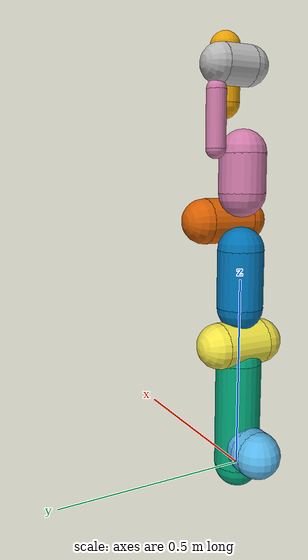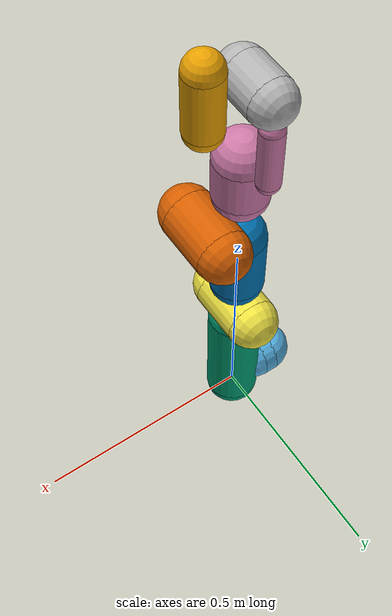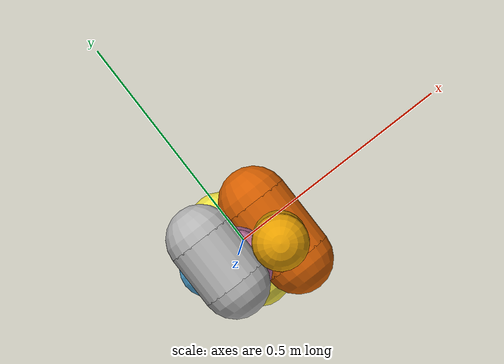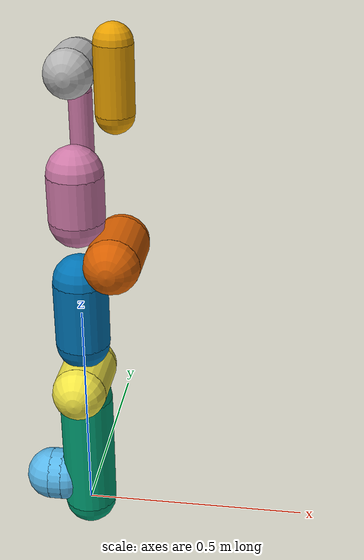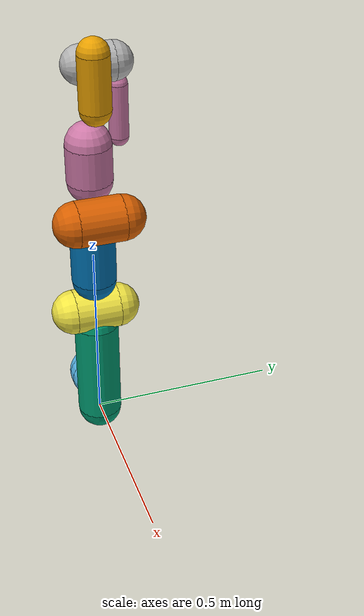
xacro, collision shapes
<?xml version='1.0' encoding='utf-8'?>
<robot xmlns:xacro="http://www.ros.org/wiki/xacro" name="panda">

  <!-- Name of this panda -->
  <xacro:arg name="arm_id" default="panda" />
  <!-- Should a franka_gripper be mounted at the flange?" -->
  <xacro:arg name="hand" default="false" />
  <!-- Is the robot being simulated in gazebo?" -->
  <xacro:arg name="gazebo" default="false" />

  <xacro:unless value="$(arg gazebo)">
      <!-- Gazebo requires a joint to a link called "world" for statically mounted robots -->
  <link name="world"/>
    <!-- Create a URDF for a real hardware -->
    <xacro:include filename="$(find franka_description)/robots/panda_arm.xacro" />
    <xacro:panda_arm arm_id="$(arg arm_id)" connected_to="world" safety_distance="0"/>

    <xacro:if value="$(arg hand)">
      <xacro:include filename="$(find franka_description)/robots/hand.xacro"/>
      <xacro:hand ns="$(arg arm_id)" rpy="0 0 ${-pi/4}" connected_to="$(arg arm_id)_link8" safety_distance="0"/>
    </xacro:if>
    <xacro:include filename="$(find franka_description)/robots/panda_arm_gazebo.xacro"/>
    <xacro:panda_gazebo arm_id="panda"/>
    <xacro:include filename="$(find franka_description)/robots/panda_control.xacro"/>
<xacro:panda_control arm_id="panda"/>

  </xacro:unless>

  <xacro:if value="$(arg gazebo)">

    <xacro:arg name="xyz" default="0 0 0" />
    <xacro:arg name="rpy" default="0 0 0" />

    <!-- Create a simulatable URDF -->
    <xacro:include filename="$(find franka_description)/robots/utils.xacro" />
    <xacro:include filename="$(find franka_description)/robots/panda_gazebo.xacro" />

    <xacro:panda_arm arm_id="$(arg arm_id)" />

    <xacro:if value="$(arg hand)">
      <xacro:hand ns="$(arg arm_id)" rpy="0 0 ${-pi/4}" connected_to="$(arg arm_id)_link8" />
      <xacro:gazebo-joint joint="$(arg arm_id)_finger_joint1" transmission="hardware_interface/EffortJointInterface" />
      <xacro:gazebo-joint joint="$(arg arm_id)_finger_joint2" transmission="hardware_interface/EffortJointInterface" />
    </xacro:if>

    <!-- Gazebo requires a joint to a link called "world" for statically mounted robots -->
    <link name="world" />
    <joint name="virtual_joint" type="fixed">
      <origin xyz="$(arg xyz)" rpy="$(arg rpy)" />
      <parent link="world" />
      <child  link="$(arg arm_id)_link0" />
    </joint>

    <xacro:gazebo-joint joint="$(arg arm_id)_joint1" transmission="hardware_interface/EffortJointInterface" />
    <xacro:gazebo-joint joint="$(arg arm_id)_joint2" transmission="hardware_interface/EffortJointInterface" />
    <xacro:gazebo-joint joint="$(arg arm_id)_joint3" transmission="hardware_interface/EffortJointInterface" />
    <xacro:gazebo-joint joint="$(arg arm_id)_joint4" transmission="hardware_interface/EffortJointInterface" />
    <xacro:gazebo-joint joint="$(arg arm_id)_joint5" transmission="hardware_interface/EffortJointInterface" />
    <xacro:gazebo-joint joint="$(arg arm_id)_joint6" transmission="hardware_interface/EffortJointInterface" />
    <xacro:gazebo-joint joint="$(arg arm_id)_joint7" transmission="hardware_interface/EffortJointInterface" />

    <xacro:transmission-franka-state arm_id="$(arg arm_id)" />
    <xacro:transmission-franka-model arm_id="$(arg arm_id)"
       root="$(arg arm_id)_joint1"
       tip="$(arg arm_id)_joint8"
     />

    <gazebo>
      <plugin name="gazebo_ros_control" filename="libgazebo_ros_control.so">
        <controlPeriod>0.001</controlPeriod>
        <robotSimType>franka_gazebo/FrankaHWSim</robotSimType>
      </plugin>
      <self_collide>true</self_collide>
    </gazebo>
  </xacro:if>

</robot>

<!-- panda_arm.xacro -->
<robot xmlns:xacro="http://www.ros.org/wiki/xacro" name="panda">
  <!-- safety_distance: Minimum safety distance in [m] by which the collision volumes are expanded and which is enforced during robot motions -->
  <!-- arm_id: Namespace of the panda arm. Serves to differentiate between arms in case of multiple instances. -->
  <xacro:macro name="panda_arm" params="arm_id:='panda' description_pkg:='franka_description' connected_to:='' xyz:='0 0 0' rpy:='0 0 0' safety_distance:=0">
    <xacro:unless value="${not connected_to}">
      <joint name="virtual_joint" type="fixed">
        <parent link="${connected_to}"/>
        <child link="${arm_id}_link0"/>
        <origin rpy="${rpy}" xyz="${xyz}"/>
      </joint>
    </xacro:unless>
    <link name="${arm_id}_link0">
      <inertial>
        <origin xyz="0 0 0" rpy="0 0 0" />
        <mass value="3.06" />
        <inertia ixx="0.3" ixy="0.0" ixz="0.0" iyy="0.3" iyz="0.0" izz="0.3" />
      </inertial>
      <visual>
        <geometry>
          <mesh filename="package://${description_pkg}/meshes/visual/link0.dae"/>
        </geometry>
      </visual>
      <collision>
        <origin xyz="-0.075 0 0.06" rpy="0 ${pi/2} 0"/>
        <geometry>
          <cylinder radius="${0.06+safety_distance}" length="0.03" />
        </geometry>
      </collision>
      <collision>
        <origin xyz="-0.06 0 0.06" rpy="0 0 0"/>
        <geometry>
          <sphere radius="${0.06+safety_distance}" />
        </geometry>
      </collision>
      <collision>
        <origin xyz="-0.09 0 0.06" rpy="0 0 0"/>
        <geometry>
          <sphere radius="${0.06+safety_distance}" />
        </geometry>
      </collision>
    </link>
    <link name="${arm_id}_link1">
      <inertial>
        <origin xyz="0 0 0" rpy="0 0 0" />
        <mass value="3.06" />
        <inertia ixx="0.3" ixy="0.0" ixz="0.0" iyy="0.3" iyz="0.0" izz="0.3" />
      </inertial>
      <visual>
        <geometry>
          <mesh filename="package://${description_pkg}/meshes/visual/link1.dae"/>
        </geometry>
      </visual>
      <collision>
        <origin xyz="0 0 -0.1915" rpy="0 0 0"/>
        <geometry>
          <cylinder radius="${0.06+safety_distance}" length="0.2830" />
        </geometry>
      </collision>
      <collision>
        <origin xyz="0 0 -0.333" rpy="0 0 0"/>
        <geometry>
          <sphere radius="${0.06+safety_distance}" />
        </geometry>
      </collision>
      <collision>
        <origin xyz="0 0 -0.05" rpy="0 0 0"/>
        <geometry>
          <sphere radius="${0.06+safety_distance}" />
        </geometry>
      </collision>
    </link>
    <joint name="${arm_id}_joint1" type="revolute">
    <dynamics damping="1.0"/>
      <safety_controller k_position="100.0" k_velocity="40.0" soft_lower_limit="-2.8973" soft_upper_limit="2.8973"/>
      <origin rpy="0 0 0" xyz="0 0 0.333"/>
      <parent link="${arm_id}_link0"/>
      <child link="${arm_id}_link1"/>
      <axis xyz="0 0 1"/>
      <limit effort="87" lower="-2.9671" upper="2.9671" velocity="2.3925" />
    </joint>
    <link name="${arm_id}_link2">
      <inertial>
      <origin xyz="0 0 0" rpy="0 0 0" />
      <mass value="3.06" />
      <inertia ixx="0.3" ixy="0.0" ixz="0.0" iyy="0.3" iyz="0.0" izz="0.3" />
      </inertial>
      <visual>
        <geometry>
          <mesh filename="package://${description_pkg}/meshes/visual/link2.dae"/>
        </geometry>
      </visual>
      <collision>
        <origin xyz="0 0 0" rpy="0 0 0"/>
        <geometry>
          <cylinder radius="${0.06+safety_distance}" length="0.12" />
        </geometry>
      </collision>
      <collision>
        <origin xyz="0 0 -0.06" rpy="0 0 0"/>
        <geometry>
          <sphere radius="${0.06+safety_distance}" />
        </geometry>
      </collision>
      <collision>
        <origin xyz="0 0 0.06" rpy="0 0 0"/>
        <geometry>
          <sphere radius="${0.06+safety_distance}" />
        </geometry>
      </collision>
    </link>
    <joint name="${arm_id}_joint2" type="revolute">
    <dynamics damping="1.0"/>
      <safety_controller k_position="100.0" k_velocity="40.0" soft_lower_limit="-1.7628" soft_upper_limit="1.7628"/>
      <origin rpy="${-pi/2} 0 0" xyz="0 0 0"/>
      <parent link="${arm_id}_link1"/>
      <child link="${arm_id}_link2"/>
      <axis xyz="0 0 1"/>
      <limit effort="87" lower="-1.8326" upper="1.8326" velocity="2.3925" />
    </joint>
    <link name="${arm_id}_link3">
    <inertial>
    <origin xyz="0 0 0" rpy="0 0 0" />
    <mass value="3.06" />
    <inertia ixx="0.3" ixy="0.0" ixz="0.0" iyy="0.3" iyz="0.0" izz="0.3" />
</inertial>
      <visual>
        <geometry>
          <mesh filename="package://${description_pkg}/meshes/visual/link3.dae"/>
        </geometry>
      </visual>
      <collision>
        <origin xyz="0 0 -0.145" rpy="0 0 0"/>
        <geometry>
          <cylinder radius="${0.06+safety_distance}" length="0.15" />
        </geometry>
      </collision>
      <collision>
        <origin xyz="0 0 -0.22" rpy="0 0 0"/>
        <geometry>
          <sphere radius="${0.06+safety_distance}" />
        </geometry>
      </collision>
      <collision>
        <origin xyz="0 0 -0.07" rpy="0 0 0"/>
        <geometry>
          <sphere radius="${0.06+safety_distance}" />
        </geometry>
      </collision>
    </link>
    <joint name="${arm_id}_joint3" type="revolute">
    <dynamics damping="1.0"/>
      <safety_controller k_position="100.0" k_velocity="40.0" soft_lower_limit="-2.8973" soft_upper_limit="2.8973"/>
      <origin rpy="${pi/2} 0 0" xyz="0 -0.316 0"/>
      <parent link="${arm_id}_link2"/>
      <child link="${arm_id}_link3"/>
      <axis xyz="0 0 1"/>
      <limit effort="87" lower="-2.9671" upper="2.9671" velocity="2.3925" />
    </joint>
    <link name="${arm_id}_link4">
    <inertial>
    <origin xyz="0 0 0" rpy="0 0 0" />
    <mass value="3.06" />
    <inertia ixx="0.3" ixy="0.0" ixz="0.0" iyy="0.3" iyz="0.0" izz="0.3" />
</inertial>
      <visual>
        <geometry>
          <mesh filename="package://${description_pkg}/meshes/visual/link4.dae"/>
        </geometry>
      </visual>
      <collision>
        <origin xyz="0 0 0" rpy="0 0 0"/>
        <geometry>
          <cylinder radius="${0.06+safety_distance}" length="0.12" />
        </geometry>
      </collision>
      <collision>
        <origin xyz="0 0 0.06" rpy="0 0 0"/>
        <geometry>
          <sphere radius="${0.06+safety_distance}" />
        </geometry>
      </collision>
      <collision>
        <origin xyz="0 0 -0.06" rpy="0 0 0"/>
        <geometry>
          <sphere radius="${0.06+safety_distance}" />
        </geometry>
      </collision>
    </link>
    <joint name="${arm_id}_joint4" type="revolute">
    <dynamics damping="1.0"/>
      <safety_controller k_position="100.0" k_velocity="40.0" soft_lower_limit="-3.0718" soft_upper_limit="0.0175"/>
      <origin rpy="${pi/2} 0 0" xyz="0.0825 0 0"/>
      <parent link="${arm_id}_link3"/>
      <child link="${arm_id}_link4"/>
      <axis xyz="0 0 1"/>
      <limit effort="87" lower="-3.0718" upper="0.0873" velocity="2.1750"/>
    </joint>
    <link name="${arm_id}_link5">
    <inertial>
    <origin xyz="0 0 0" rpy="0 0 0" />
    <mass value="3.06" />
    <inertia ixx="0.3" ixy="0.0" ixz="0.0" iyy="0.3" iyz="0.0" izz="0.3" />
</inertial>
      <visual>
        <geometry>
          <mesh filename="package://${description_pkg}/meshes/visual/link5.dae"/>
        </geometry>
      </visual>
      <collision>
        <origin xyz="0 0 -0.26" rpy="0 0 0"/>
        <geometry>
          <cylinder radius="${0.06+safety_distance}" length="0.1" />
        </geometry>
      </collision>
      <collision>
        <origin xyz="0 0 -0.31" rpy="0 0 0"/>
        <geometry>
          <sphere radius="${0.06+safety_distance}" />
        </geometry>
      </collision>
      <collision>
        <origin xyz="0 0 -0.21" rpy="0 0 0"/>
        <geometry>
          <sphere radius="${0.06+safety_distance}" />
        </geometry>
      </collision>
      <collision>
        <origin xyz="0 0.08 -0.13" rpy="0 0 0"/>
        <geometry>
          <cylinder radius="${0.025+safety_distance}" length="0.14" />
        </geometry>
      </collision>
      <collision>
        <origin xyz="0 0.08 -0.06" rpy="0 0 0"/>
        <geometry>
          <sphere radius="${0.025+safety_distance}" />
        </geometry>
      </collision>
      <collision>
        <origin xyz="0 0.08 -0.20" rpy="0 0 0"/>
        <geometry>
          <sphere radius="${0.025+safety_distance}" />
        </geometry>
      </collision>

    </link>
    <joint name="${arm_id}_joint5" type="revolute">
    <dynamics damping="1.0"/>
      <safety_controller k_position="100.0" k_velocity="40.0" soft_lower_limit="-2.8973" soft_upper_limit="2.8973"/>
      <origin rpy="${-pi/2} 0 0" xyz="-0.0825 0.384 0"/>
      <parent link="${arm_id}_link4"/>
      <child link="${arm_id}_link5"/>
      <axis xyz="0 0 1"/>
        <limit effort="12" lower="-2.9671" upper="2.9671" velocity="2.8710" />
    </joint>
    <link name="${arm_id}_link6">
    <inertial>
    <origin xyz="0 0 0" rpy="0 0 0" />
    <mass value="3.06" />
    <inertia ixx="0.3" ixy="0.0" ixz="0.0" iyy="0.3" iyz="0.0" izz="0.3" />
</inertial>
      <visual>
        <geometry>
          <mesh filename="package://${description_pkg}/meshes/visual/link6.dae"/>
        </geometry>
      </visual>
      <collision>
        <origin xyz="0 0 -0.03" rpy="0 0 0"/>
        <geometry>
          <cylinder radius="${0.05+safety_distance}" length="0.08" />
        </geometry>
      </collision>
      <collision>
        <origin xyz="0 0 0.01" rpy="0 0 0"/>
        <geometry>
          <sphere radius="${0.05+safety_distance}" />
        </geometry>
      </collision>
      <collision>
        <origin xyz="0 0 -0.07" rpy="0 0 0"/>
        <geometry>
          <sphere radius="${0.05+safety_distance}" />
        </geometry>
      </collision>
    </link>
    <joint name="${arm_id}_joint6" type="revolute">
    <dynamics damping="1.0"/>
      <safety_controller k_position="100.0" k_velocity="40.0" soft_lower_limit="-0.0175" soft_upper_limit="3.7525"/>
      <origin rpy="${pi/2} 0 0" xyz="0 0 0"/>
      <parent link="${arm_id}_link5"/>
      <child link="${arm_id}_link6"/>
      <axis xyz="0 0 1"/>
      <limit effort="12" lower="-0.0873" upper="3.8223" velocity="2.8710" />
    </joint>
    <link name="${arm_id}_link7">
    <inertial>
    <origin xyz="0 0 0" rpy="0 0 0" />
    <mass value="3.06" />
    <inertia ixx="0.3" ixy="0.0" ixz="0.0" iyy="0.3" iyz="0.0" izz="0.3" />
</inertial>
      <visual>
        <geometry>
          <mesh filename="package://${description_pkg}/meshes/visual/link7.dae"/>
        </geometry>
      </visual>
      <collision>
        <origin xyz="0 0 0.01" rpy="0 0 0"/>
        <geometry>
          <cylinder radius="${0.04+safety_distance}" length="0.14" />
        </geometry>
      </collision>
      <collision>
        <origin xyz="0 0 0.08" rpy="0 0 0"/>
        <geometry>
          <sphere radius="${0.04+safety_distance}"  />
        </geometry>
      </collision>
      <collision>
        <origin xyz="0 0 -0.06" rpy="0 0 0"/>
        <geometry>
          <sphere radius="${0.04+safety_distance}"  />
        </geometry>
      </collision>
    </link>
    <joint name="${arm_id}_joint7" type="revolute">
    <dynamics damping="1.0"/>
      <safety_controller k_position="100.0" k_velocity="40.0" soft_lower_limit="-2.8973" soft_upper_limit="2.8973"/>
      <origin rpy="${pi/2} 0 0" xyz="0.088 0 0"/>
      <parent link="${arm_id}_link6"/>
      <child link="${arm_id}_link7"/>
      <axis xyz="0 0 1"/>
      <limit effort="12" lower="-2.9671" upper="2.9671" velocity="2.8710" />
    </joint>
    <link name="${arm_id}_link8">
    <inertial>
    <origin xyz="0 0 0" rpy="0 0 0" />
    <mass value="3.06" />
    <inertia ixx="0.3" ixy="0.0" ixz="0.0" iyy="0.3" iyz="0.0" izz="0.3" />
</inertial>
    </link>
    <joint name="${arm_id}_joint8" type="fixed">
      <origin rpy="0 0 0" xyz="0 0 0.107"/>
      <parent link="${arm_id}_link7"/>
      <child link="${arm_id}_link8"/>
    </joint>
  </xacro:macro>
</robot>
